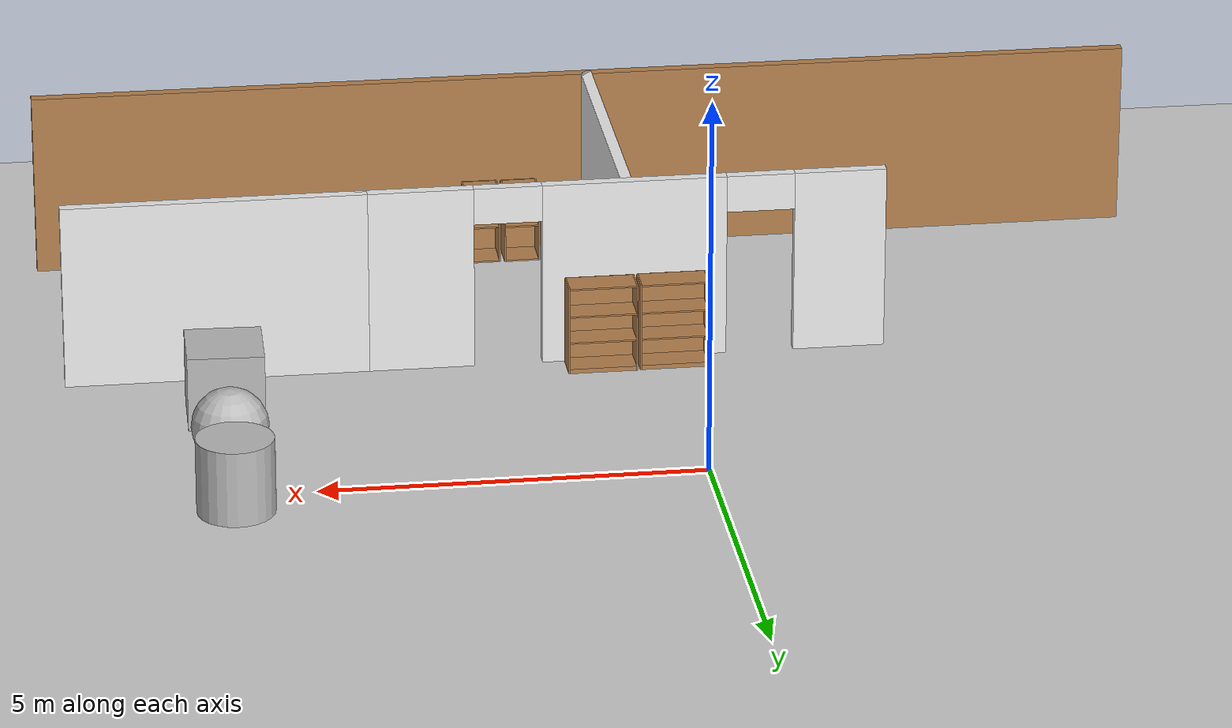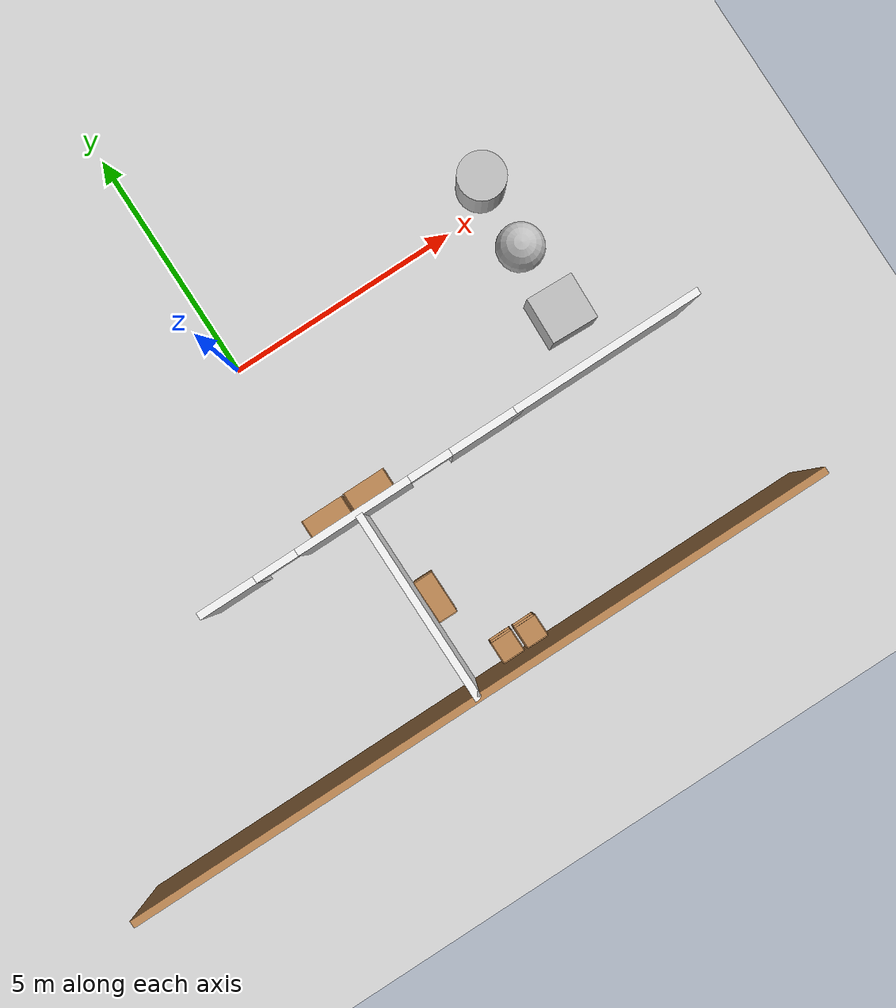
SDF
<sdf version="1.6">
 <world name="default">
  <model name="ground_plane">
   <static>1</static>
   <link name="link">
    <collision name="collision">
     <geometry><plane><normal>0 0 1</normal><size>100 100</size></plane></geometry>
     <surface>
      <contact><collide_bitmask>65535</collide_bitmask></contact>
      <friction><ode><mu>100</mu><mu2>50</mu2></ode></friction>
     </surface>
    </collision>
    <visual name="visual">
     <cast_shadows>0</cast_shadows>
     <geometry><plane><normal>0 0 1</normal><size>100 100</size></plane></geometry>
     <material>
      <script><uri>file://media/materials/scripts/gazebo.material</uri><name>Gazebo/Grey</name></script>
     </material>
    </visual>
   </link>
  </model>
  <model name="textured_shapes">
   <pose>5.99523 -1.07285 0.5 0 -0 -0.035266</pose>
   <link name="box">
    <pose>0 -1.5 0 0 -0 0</pose>
    <collision name="collision"><geometry><box><size>1 1 1</size></box></geometry></collision>
    <visual name="visual">
     <geometry><box><size>1 1 1</size></box></geometry>
     <material>
      <script>
       <uri>model://textured_shapes/materials/scripts</uri>
       <uri>model://textured_shapes/materials/textures</uri>
       <name>TexturedShape/Squares</name>
      </script>
     </material>
    </visual>
    <inertial>
     <inertia><ixx>1</ixx><ixy>0</ixy><ixz>0</ixz><iyy>1</iyy><iyz>0</iyz><izz>1</izz></inertia>
     <mass>1</mass>
    </inertial>
   </link>
   <link name="sphere">
    <collision name="collision"><geometry><sphere><radius>0.5</radius></sphere></geometry></collision>
    <visual name="visual">
     <geometry><sphere><radius>0.5</radius></sphere></geometry>
     <material>
      <script>
       <uri>model://textured_shapes/materials/scripts</uri>
       <uri>model://textured_shapes/materials/textures</uri>
       <name>TexturedShape/Squares</name>
      </script>
     </material>
    </visual>
    <inertial>
     <inertia><ixx>1</ixx><ixy>0</ixy><ixz>0</ixz><iyy>1</iyy><iyz>0</iyz><izz>1</izz></inertia>
     <mass>1</mass>
    </inertial>
   </link>
   <link name="cylinder">
    <pose>0 1.5 0 0 -0 0</pose>
    <collision name="collision">
     <geometry><cylinder><radius>0.5</radius><length>1</length></cylinder></geometry>
    </collision>
    <visual name="visual">
     <geometry><cylinder><radius>0.5</radius><length>1</length></cylinder></geometry>
     <material>
      <script>
       <uri>model://textured_shapes/materials/scripts</uri>
       <uri>model://textured_shapes/materials/textures</uri>
       <name>TexturedShape/Squares</name>
      </script>
     </material>
    </visual>
    <inertial>
     <inertia><ixx>1</ixx><ixy>0</ixy><ixz>0</ixz><iyy>1</iyy><iyz>0</iyz><izz>1</izz></inertia>
     <mass>1</mass>
    </inertial>
   </link>
  </model>
  <model name="bookshelf">
   <static>1</static>
   <link name="link">
    <inertial><mass>1</mass></inertial>
    <collision name="back">
     <pose>0 0.005 0.6 0 -0 0</pose>
     <geometry><box><size>0.9 0.01 1.2</size></box></geometry>
    </collision>
    <visual name="visual1">
     <pose>0 0.005 0.6 0 -0 0</pose>
     <geometry><box><size>0.9 0.01 1.2</size></box></geometry>
     <material>
      <script><uri>file://media/materials/scripts/gazebo.material</uri><name>Gazebo/Wood</name></script>
     </material>
    </visual>
    <collision name="left_side">
     <pose>0.45 -0.195 0.6 0 -0 0</pose>
     <geometry><box><size>0.02 0.4 1.2</size></box></geometry>
    </collision>
    <visual name="visual2">
     <pose>0.45 -0.195 0.6 0 -0 0</pose>
     <geometry><box><size>0.02 0.4 1.2</size></box></geometry>
     <material>
      <script><uri>file://media/materials/scripts/gazebo.material</uri><name>Gazebo/Wood</name></script>
     </material>
    </visual>
    <collision name="right_side">
     <pose>-0.45 -0.195 0.6 0 -0 0</pose>
     <geometry><box><size>0.02 0.4 1.2</size></box></geometry>
    </collision>
    <visual name="visual3">
     <pose>-0.45 -0.195 0.6 0 -0 0</pose>
     <geometry><box><size>0.02 0.4 1.2</size></box></geometry>
     <material>
      <script><uri>file://media/materials/scripts/gazebo.material</uri><name>Gazebo/Wood</name></script>
     </material>
    </visual>
    <collision name="bottom">
     <pose>0 -0.195 0.03 0 -0 0</pose>
     <geometry><box><size>0.88 0.4 0.06</size></box></geometry>
    </collision>
    <visual name="visual4">
     <pose>0 -0.195 0.03 0 -0 0</pose>
     <geometry><box><size>0.88 0.4 0.06</size></box></geometry>
     <material>
      <script><uri>file://media/materials/scripts/gazebo.material</uri><name>Gazebo/Wood</name></script>
     </material>
    </visual>
    <collision name="top">
     <pose>0 -0.195 1.19 0 -0 0</pose>
     <geometry><box><size>0.88 0.4 0.02</size></box></geometry>
    </collision>
    <visual name="visual5">
     <pose>0 -0.195 1.19 0 -0 0</pose>
     <geometry><box><size>0.88 0.4 0.02</size></box></geometry>
     <material>
      <script><uri>file://media/materials/scripts/gazebo.material</uri><name>Gazebo/Wood</name></script>
     </material>
    </visual>
    <collision name="low_shelf">
     <pose>0 -0.195 0.43 0 -0 0</pose>
     <geometry><box><size>0.88 0.4 0.02</size></box></geometry>
    </collision>
    <visual name="visual6">
     <pose>0 -0.195 0.43 0 -0 0</pose>
     <geometry><box><size>0.88 0.4 0.02</size></box></geometry>
     <material>
      <script><uri>file://media/materials/scripts/gazebo.material</uri><name>Gazebo/Wood</name></script>
     </material>
    </visual>
    <collision name="high_shelf">
     <pose>0 -0.195 0.8 0 -0 0</pose>
     <geometry><box><size>0.88 0.4 0.02</size></box></geometry>
    </collision>
    <visual name="visual7">
     <pose>0 -0.195 0.8 0 -0 0</pose>
     <geometry><box><size>0.88 0.4 0.02</size></box></geometry>
     <material>
      <script><uri>file://media/materials/scripts/gazebo.material</uri><name>Gazebo/Wood</name></script>
     </material>
    </visual>
   </link>
   <pose>-0.042308 -3.68874 0 0 -0 3.14159</pose>
  </model>
  <model name="bookshelf_clone">
   <static>1</static>
   <link name="link">
    <inertial><mass>1</mass></inertial>
    <collision name="back">
     <pose>0 0.005 0.6 0 -0 0</pose>
     <geometry><box><size>0.9 0.01 1.2</size></box></geometry>
    </collision>
    <visual name="visual1">
     <pose>0 0.005 0.6 0 -0 0</pose>
     <geometry><box><size>0.9 0.01 1.2</size></box></geometry>
     <material>
      <script><uri>file://media/materials/scripts/gazebo.material</uri><name>Gazebo/Wood</name></script>
     </material>
    </visual>
    <collision name="left_side">
     <pose>0.45 -0.195 0.6 0 -0 0</pose>
     <geometry><box><size>0.02 0.4 1.2</size></box></geometry>
    </collision>
    <visual name="visual2">
     <pose>0.45 -0.195 0.6 0 -0 0</pose>
     <geometry><box><size>0.02 0.4 1.2</size></box></geometry>
     <material>
      <script><uri>file://media/materials/scripts/gazebo.material</uri><name>Gazebo/Wood</name></script>
     </material>
    </visual>
    <collision name="right_side">
     <pose>-0.45 -0.195 0.6 0 -0 0</pose>
     <geometry><box><size>0.02 0.4 1.2</size></box></geometry>
    </collision>
    <visual name="visual3">
     <pose>-0.45 -0.195 0.6 0 -0 0</pose>
     <geometry><box><size>0.02 0.4 1.2</size></box></geometry>
     <material>
      <script><uri>file://media/materials/scripts/gazebo.material</uri><name>Gazebo/Wood</name></script>
     </material>
    </visual>
    <collision name="bottom">
     <pose>0 -0.195 0.03 0 -0 0</pose>
     <geometry><box><size>0.88 0.4 0.06</size></box></geometry>
    </collision>
    <visual name="visual4">
     <pose>0 -0.195 0.03 0 -0 0</pose>
     <geometry><box><size>0.88 0.4 0.06</size></box></geometry>
     <material>
      <script><uri>file://media/materials/scripts/gazebo.material</uri><name>Gazebo/Wood</name></script>
     </material>
    </visual>
    <collision name="top">
     <pose>0 -0.195 1.19 0 -0 0</pose>
     <geometry><box><size>0.88 0.4 0.02</size></box></geometry>
    </collision>
    <visual name="visual5">
     <pose>0 -0.195 1.19 0 -0 0</pose>
     <geometry><box><size>0.88 0.4 0.02</size></box></geometry>
     <material>
      <script><uri>file://media/materials/scripts/gazebo.material</uri><name>Gazebo/Wood</name></script>
     </material>
    </visual>
    <collision name="low_shelf">
     <pose>0 -0.195 0.43 0 -0 0</pose>
     <geometry><box><size>0.88 0.4 0.02</size></box></geometry>
    </collision>
    <visual name="visual6">
     <pose>0 -0.195 0.43 0 -0 0</pose>
     <geometry><box><size>0.88 0.4 0.02</size></box></geometry>
     <material>
      <script><uri>file://media/materials/scripts/gazebo.material</uri><name>Gazebo/Wood</name></script>
     </material>
    </visual>
    <collision name="high_shelf">
     <pose>0 -0.195 0.8 0 -0 0</pose>
     <geometry><box><size>0.88 0.4 0.02</size></box></geometry>
    </collision>
    <visual name="visual7">
     <pose>0 -0.195 0.8 0 -0 0</pose>
     <geometry><box><size>0.88 0.4 0.02</size></box></geometry>
     <material>
      <script><uri>file://media/materials/scripts/gazebo.material</uri><name>Gazebo/Wood</name></script>
     </material>
    </visual>
   </link>
   <pose>0.908578 -3.67779 0 0 -0 3.14159</pose>
  </model>
  <model name="cabinet_clone">
   <static>1</static>
   <link name="cabinet_bottom_plate">
    <inertial>
     <pose>0 0 -1 0 -0 0</pose>
     <inertia><ixx>2.05</ixx><ixy>0</ixy><ixz>0</ixz><iyy>2.05</iyy><iyz>0</iyz><izz>2.05</izz></inertia>
     <mass>25</mass>
    </inertial>
    <collision name="cabinet_bottom_plate_geom">
     <pose>0 0 0.01 0 -0 0</pose>
     <geometry><box><size>0.45 0.45 0.02</size></box></geometry>
    </collision>
    <visual name="cabinet_bottom_plate_geom_visual">
     <pose>0 0 0.01 0 -0 0</pose>
     <geometry><box><size>0.45 0.45 0.02</size></box></geometry>
     <material>
      <script><uri>file://media/materials/scripts/gazebo.material</uri><name>Gazebo/Wood</name></script>
     </material>
    </visual>
    <collision name="cabinet_bottom_plate_geom_cabinet_back_plate">
     <pose>0.235 0 0.51 0 -0 0</pose>
     <geometry><box><size>0.02 0.45 1.02</size></box></geometry>
    </collision>
    <visual name="cabinet_bottom_plate_geom_cabinet_back_plate_visual">
     <pose>0.235 0 0.51 0 -0 0</pose>
     <geometry><box><size>0.02 0.45 1.02</size></box></geometry>
     <material>
      <script><uri>file://media/materials/scripts/gazebo.material</uri><name>Gazebo/Wood</name></script>
     </material>
    </visual>
    <collision name="cabinet_bottom_plate_geom_cabinet_left_plate">
     <pose>0 0.235 0.51 0 -0 0</pose>
     <geometry><box><size>0.45 0.02 1.02</size></box></geometry>
    </collision>
    <visual name="cabinet_bottom_plate_geom_cabinet_left_plate_visual">
     <pose>0 0.235 0.51 0 -0 0</pose>
     <geometry><box><size>0.45 0.02 1.02</size></box></geometry>
     <material>
      <script><uri>file://media/materials/scripts/gazebo.material</uri><name>Gazebo/Wood</name></script>
     </material>
    </visual>
    <collision name="cabinet_bottom_plate_geom_cabinet_middle_plate">
     <pose>0 0 0.51 0 -0 0</pose>
     <geometry><box><size>0.45 0.45 0.02</size></box></geometry>
    </collision>
    <visual name="cabinet_bottom_plate_geom_cabinet_middle_plate_visual">
     <pose>0 0 0.51 0 -0 0</pose>
     <geometry><box><size>0.45 0.45 0.02</size></box></geometry>
     <material>
      <script><uri>file://media/materials/scripts/gazebo.material</uri><name>Gazebo/Wood</name></script>
     </material>
    </visual>
    <collision name="cabinet_bottom_plate_geom_cabinet_right_plate">
     <pose>0 -0.235 0.51 0 -0 0</pose>
     <geometry><box><size>0.45 0.02 1.02</size></box></geometry>
    </collision>
    <visual name="cabinet_bottom_plate_geom_cabinet_right_plate_visual">
     <pose>0 -0.235 0.51 0 -0 0</pose>
     <geometry><box><size>0.45 0.02 1.02</size></box></geometry>
     <material>
      <script><uri>file://media/materials/scripts/gazebo.material</uri><name>Gazebo/Wood</name></script>
     </material>
    </visual>
    <collision name="cabinet_bottom_plate_geom_cabinet_top_plate">
     <pose>0 0 1.01 0 -0 0</pose>
     <geometry><box><size>0.45 0.45 0.02</size></box></geometry>
    </collision>
    <visual name="cabinet_bottom_plate_geom_cabinet_top_plate_visual">
     <pose>0 0 1.01 0 -0 0</pose>
     <geometry><box><size>0.45 0.45 0.02</size></box></geometry>
     <material>
      <script><uri>file://media/materials/scripts/gazebo.material</uri><name>Gazebo/Wood</name></script>
     </material>
    </visual>
   </link>
   <pose>1.49574 -7.4413 0 0 0 -1.5708</pose>
  </model>
  <model name="cabinet_clone_0">
   <static>1</static>
   <link name="cabinet_bottom_plate">
    <inertial>
     <pose>0 0 -1 0 -0 0</pose>
     <inertia><ixx>2.05</ixx><ixy>0</ixy><ixz>0</ixz><iyy>2.05</iyy><iyz>0</iyz><izz>2.05</izz></inertia>
     <mass>25</mass>
    </inertial>
    <collision name="cabinet_bottom_plate_geom">
     <pose>0 0 0.01 0 -0 0</pose>
     <geometry><box><size>0.45 0.45 0.02</size></box></geometry>
    </collision>
    <visual name="cabinet_bottom_plate_geom_visual">
     <pose>0 0 0.01 0 -0 0</pose>
     <geometry><box><size>0.45 0.45 0.02</size></box></geometry>
     <material>
      <script><uri>file://media/materials/scripts/gazebo.material</uri><name>Gazebo/Wood</name></script>
     </material>
    </visual>
    <collision name="cabinet_bottom_plate_geom_cabinet_back_plate">
     <pose>0.235 0 0.51 0 -0 0</pose>
     <geometry><box><size>0.02 0.45 1.02</size></box></geometry>
    </collision>
    <visual name="cabinet_bottom_plate_geom_cabinet_back_plate_visual">
     <pose>0.235 0 0.51 0 -0 0</pose>
     <geometry><box><size>0.02 0.45 1.02</size></box></geometry>
     <material>
      <script><uri>file://media/materials/scripts/gazebo.material</uri><name>Gazebo/Wood</name></script>
     </material>
    </visual>
    <collision name="cabinet_bottom_plate_geom_cabinet_left_plate">
     <pose>0 0.235 0.51 0 -0 0</pose>
     <geometry><box><size>0.45 0.02 1.02</size></box></geometry>
    </collision>
    <visual name="cabinet_bottom_plate_geom_cabinet_left_plate_visual">
     <pose>0 0.235 0.51 0 -0 0</pose>
     <geometry><box><size>0.45 0.02 1.02</size></box></geometry>
     <material>
      <script><uri>file://media/materials/scripts/gazebo.material</uri><name>Gazebo/Wood</name></script>
     </material>
    </visual>
    <collision name="cabinet_bottom_plate_geom_cabinet_middle_plate">
     <pose>0 0 0.51 0 -0 0</pose>
     <geometry><box><size>0.45 0.45 0.02</size></box></geometry>
    </collision>
    <visual name="cabinet_bottom_plate_geom_cabinet_middle_plate_visual">
     <pose>0 0 0.51 0 -0 0</pose>
     <geometry><box><size>0.45 0.45 0.02</size></box></geometry>
     <material>
      <script><uri>file://media/materials/scripts/gazebo.material</uri><name>Gazebo/Wood</name></script>
     </material>
    </visual>
    <collision name="cabinet_bottom_plate_geom_cabinet_right_plate">
     <pose>0 -0.235 0.51 0 -0 0</pose>
     <geometry><box><size>0.45 0.02 1.02</size></box></geometry>
    </collision>
    <visual name="cabinet_bottom_plate_geom_cabinet_right_plate_visual">
     <pose>0 -0.235 0.51 0 -0 0</pose>
     <geometry><box><size>0.45 0.02 1.02</size></box></geometry>
     <material>
      <script><uri>file://media/materials/scripts/gazebo.material</uri><name>Gazebo/Wood</name></script>
     </material>
    </visual>
    <collision name="cabinet_bottom_plate_geom_cabinet_top_plate">
     <pose>0 0 1.01 0 -0 0</pose>
     <geometry><box><size>0.45 0.45 0.02</size></box></geometry>
    </collision>
    <visual name="cabinet_bottom_plate_geom_cabinet_top_plate_visual">
     <pose>0 0 1.01 0 -0 0</pose>
     <geometry><box><size>0.45 0.45 0.02</size></box></geometry>
     <material>
      <script><uri>file://media/materials/scripts/gazebo.material</uri><name>Gazebo/Wood</name></script>
     </material>
    </visual>
   </link>
   <pose>2.03504 -7.44814 0 0 0 -1.5708</pose>
  </model>
  <model name="bookshelf_clone_clone">
   <static>1</static>
   <link name="link">
    <inertial><mass>1</mass></inertial>
    <collision name="back">
     <pose>0 0.005 0.6 0 -0 0</pose>
     <geometry><box><size>0.9 0.01 1.2</size></box></geometry>
    </collision>
    <visual name="visual1">
     <pose>0 0.005 0.6 0 -0 0</pose>
     <geometry><box><size>0.9 0.01 1.2</size></box></geometry>
     <material>
      <script><uri>file://media/materials/scripts/gazebo.material</uri><name>Gazebo/Wood</name></script>
     </material>
    </visual>
    <collision name="left_side">
     <pose>0.45 -0.195 0.6 0 -0 0</pose>
     <geometry><box><size>0.02 0.4 1.2</size></box></geometry>
    </collision>
    <visual name="visual2">
     <pose>0.45 -0.195 0.6 0 -0 0</pose>
     <geometry><box><size>0.02 0.4 1.2</size></box></geometry>
     <material>
      <script><uri>file://media/materials/scripts/gazebo.material</uri><name>Gazebo/Wood</name></script>
     </material>
    </visual>
    <collision name="right_side">
     <pose>-0.45 -0.195 0.6 0 -0 0</pose>
     <geometry><box><size>0.02 0.4 1.2</size></box></geometry>
    </collision>
    <visual name="visual3">
     <pose>-0.45 -0.195 0.6 0 -0 0</pose>
     <geometry><box><size>0.02 0.4 1.2</size></box></geometry>
     <material>
      <script><uri>file://media/materials/scripts/gazebo.material</uri><name>Gazebo/Wood</name></script>
     </material>
    </visual>
    <collision name="bottom">
     <pose>0 -0.195 0.03 0 -0 0</pose>
     <geometry><box><size>0.88 0.4 0.06</size></box></geometry>
    </collision>
    <visual name="visual4">
     <pose>0 -0.195 0.03 0 -0 0</pose>
     <geometry><box><size>0.88 0.4 0.06</size></box></geometry>
     <material>
      <script><uri>file://media/materials/scripts/gazebo.material</uri><name>Gazebo/Wood</name></script>
     </material>
    </visual>
    <collision name="top">
     <pose>0 -0.195 1.19 0 -0 0</pose>
     <geometry><box><size>0.88 0.4 0.02</size></box></geometry>
    </collision>
    <visual name="visual5">
     <pose>0 -0.195 1.19 0 -0 0</pose>
     <geometry><box><size>0.88 0.4 0.02</size></box></geometry>
     <material>
      <script><uri>file://media/materials/scripts/gazebo.material</uri><name>Gazebo/Wood</name></script>
     </material>
    </visual>
    <collision name="low_shelf">
     <pose>0 -0.195 0.43 0 -0 0</pose>
     <geometry><box><size>0.88 0.4 0.02</size></box></geometry>
    </collision>
    <visual name="visual6">
     <pose>0 -0.195 0.43 0 -0 0</pose>
     <geometry><box><size>0.88 0.4 0.02</size></box></geometry>
     <material>
      <script><uri>file://media/materials/scripts/gazebo.material</uri><name>Gazebo/Wood</name></script>
     </material>
    </visual>
    <collision name="high_shelf">
     <pose>0 -0.195 0.8 0 -0 0</pose>
     <geometry><box><size>0.88 0.4 0.02</size></box></geometry>
    </collision>
    <visual name="visual7">
     <pose>0 -0.195 0.8 0 -0 0</pose>
     <geometry><box><size>0.88 0.4 0.02</size></box></geometry>
     <material>
      <script><uri>file://media/materials/scripts/gazebo.material</uri><name>Gazebo/Wood</name></script>
     </material>
    </visual>
   </link>
   <pose>0.663344 -5.89171 0 0 -0 1.57079</pose>
  </model>
  <model name="my_building_0">
   <link name="Wall_12">
    <pose>-1.48194 -3.42537 0 0 -0 0</pose>
    <inertial>
     <mass>1</mass>
     <inertia><ixx>1</ixx><ixy>0</ixy><ixz>0</ixz><iyy>1</iyy><iyz>0</iyz><izz>1</izz></inertia>
    </inertial>
    <visual name="Wall_12_Visual_0">
     <pose>-2.89158 0 1.25 0 -0 0</pose>
     <geometry><box><size>1.21684 0.15 2.5</size></box></geometry>
     <material>
      <script><uri>file://media/materials/scripts/gazebo.material</uri><name>Gazebo/White</name></script>
      <ambient>1 1 1 1</ambient>
      <diffuse>1 1 1 1</diffuse>
      <specular>0.2 0.2 0.2 1</specular>
      <emissive>0 0 0 1</emissive>
      <shader type="pixel"><normal_map>__default__</normal_map></shader>
     </material>
     <meta><layer>0</layer></meta>
    </visual>
    <visual name="Wall_12_Visual_1">
     <pose>-0.161658 0 1.25 0 -0 0</pose>
     <geometry><box><size>2.44301 0.15 2.5</size></box></geometry>
     <material>
      <script><uri>file://media/materials/scripts/gazebo.material</uri><name>Gazebo/White</name></script>
      <ambient>1 1 1 1</ambient>
      <diffuse>1 1 1 1</diffuse>
      <specular>0.2 0.2 0.2 1</specular>
      <emissive>0 0 0 1</emissive>
      <shader type="pixel"><normal_map>__default__</normal_map></shader>
     </material>
     <meta><layer>0</layer></meta>
    </visual>
    <visual name="Wall_12_Visual_2">
     <pose>2.72993 0 1.25 0 -0 0</pose>
     <geometry><box><size>1.54015 0.15 2.5</size></box></geometry>
     <material>
      <script><uri>file://media/materials/scripts/gazebo.material</uri><name>Gazebo/White</name></script>
      <ambient>1 1 1 1</ambient>
      <diffuse>1 1 1 1</diffuse>
      <specular>0.2 0.2 0.2 1</specular>
      <emissive>0 0 0 1</emissive>
      <shader type="pixel"><normal_map>__default__</normal_map></shader>
     </material>
     <meta><layer>0</layer></meta>
    </visual>
    <visual name="Wall_12_Visual_3">
     <pose>-1.83316 0 2.25 0 -0 0</pose>
     <geometry><box><size>0.9 0.15 0.5</size></box></geometry>
     <material>
      <script><uri>file://media/materials/scripts/gazebo.material</uri><name>Gazebo/White</name></script>
      <ambient>1 1 1 1</ambient>
      <diffuse>1 1 1 1</diffuse>
      <specular>0.2 0.2 0.2 1</specular>
      <emissive>0 0 0 1</emissive>
      <shader type="pixel"><normal_map>__default__</normal_map></shader>
     </material>
     <meta><layer>0</layer></meta>
    </visual>
    <visual name="Wall_12_Visual_4">
     <pose>1.50985 0 2.25 0 -0 0</pose>
     <geometry><box><size>0.9 0.15 0.5</size></box></geometry>
     <material>
      <script><uri>file://media/materials/scripts/gazebo.material</uri><name>Gazebo/White</name></script>
      <ambient>1 1 1 1</ambient>
      <diffuse>1 1 1 1</diffuse>
      <specular>0.2 0.2 0.2 1</specular>
      <emissive>0 0 0 1</emissive>
      <shader type="pixel"><normal_map>__default__</normal_map></shader>
     </material>
     <meta><layer>0</layer></meta>
    </visual>
    <collision name="Wall_12_Collision_0">
     <pose>-2.89158 0 1.25 0 -0 0</pose>
     <geometry><box><size>1.21684 0.15 2.5</size></box></geometry>
     <surface>
      <friction>
       <ode><mu>1</mu><mu2>1</mu2><fdir1>0 0 0</fdir1><slip1>0</slip1><slip2>0</slip2></ode>
       <torsional>
        <coefficient>1</coefficient>
        <patch_radius>0</patch_radius>
        <surface_radius>0</surface_radius>
        <use_patch_radius>1</use_patch_radius>
        <ode><slip>0</slip></ode>
       </torsional>
      </friction>
      <bounce><restitution_coefficient>0</restitution_coefficient><threshold>1e+06</threshold></bounce>
      <contact>
       <collide_without_contact>0</collide_without_contact>
       <collide_without_contact_bitmask>1</collide_without_contact_bitmask>
       <collide_bitmask>1</collide_bitmask>
       <ode>
        <soft_cfm>0</soft_cfm>
        <soft_erp>0.2</soft_erp>
        <kp>1e+13</kp>
        <kd>1</kd>
        <max_vel>0.01</max_vel>
        <min_depth>0</min_depth>
       </ode>
       <bullet>
        <split_impulse>1</split_impulse>
        <split_impulse_penetration_threshold>-0.01</split_impulse_penetration_threshold>
        <soft_cfm>0</soft_cfm>
        <soft_erp>0.2</soft_erp>
        <kp>1e+13</kp>
        <kd>1</kd>
       </bullet>
      </contact>
     </surface>
    </collision>
    <collision name="Wall_12_Collision_2">
     <pose>2.72993 0 1.25 0 -0 0</pose>
     <geometry><box><size>1.54015 0.15 2.5</size></box></geometry>
     <surface>
      <friction>
       <ode><mu>1</mu><mu2>1</mu2><fdir1>0 0 0</fdir1><slip1>0</slip1><slip2>0</slip2></ode>
       <torsional>
        <coefficient>1</coefficient>
        <patch_radius>0</patch_radius>
        <surface_radius>0</surface_radius>
        <use_patch_radius>1</use_patch_radius>
        <ode><slip>0</slip></ode>
       </torsional>
      </friction>
      <bounce><restitution_coefficient>0</restitution_coefficient><threshold>1e+06</threshold></bounce>
      <contact>
       <collide_without_contact>0</collide_without_contact>
       <collide_without_contact_bitmask>1</collide_without_contact_bitmask>
       <collide_bitmask>1</collide_bitmask>
       <ode>
        <soft_cfm>0</soft_cfm>
        <soft_erp>0.2</soft_erp>
        <kp>1e+13</kp>
        <kd>1</kd>
        <max_vel>0.01</max_vel>
        <min_depth>0</min_depth>
       </ode>
       <bullet>
        <split_impulse>1</split_impulse>
        <split_impulse_penetration_threshold>-0.01</split_impulse_penetration_threshold>
        <soft_cfm>0</soft_cfm>
        <soft_erp>0.2</soft_erp>
        <kp>1e+13</kp>
        <kd>1</kd>
       </bullet>
      </contact>
     </surface>
    </collision>
    <collision name="Wall_12_Collision_1">
     <pose>-0.161658 0 1.25 0 -0 0</pose>
     <geometry><box><size>2.44301 0.15 2.5</size></box></geometry>
     <surface>
      <friction>
       <ode><mu>1</mu><mu2>1</mu2><fdir1>0 0 0</fdir1><slip1>0</slip1><slip2>0</slip2></ode>
       <torsional>
        <coefficient>1</coefficient>
        <patch_radius>0</patch_radius>
        <surface_radius>0</surface_radius>
        <use_patch_radius>1</use_patch_radius>
        <ode><slip>0</slip></ode>
       </torsional>
      </friction>
      <bounce><restitution_coefficient>0</restitution_coefficient><threshold>1e+06</threshold></bounce>
      <contact>
       <collide_without_contact>0</collide_without_contact>
       <collide_without_contact_bitmask>1</collide_without_contact_bitmask>
       <collide_bitmask>1</collide_bitmask>
       <ode>
        <soft_cfm>0</soft_cfm>
        <soft_erp>0.2</soft_erp>
        <kp>1e+13</kp>
        <kd>1</kd>
        <max_vel>0.01</max_vel>
        <min_depth>0</min_depth>
       </ode>
       <bullet>
        <split_impulse>1</split_impulse>
        <split_impulse_penetration_threshold>-0.01</split_impulse_penetration_threshold>
        <soft_cfm>0</soft_cfm>
        <soft_erp>0.2</soft_erp>
        <kp>1e+13</kp>
        <kd>1</kd>
       </bullet>
      </contact>
     </surface>
    </collision>
    <collision name="Wall_12_Collision_3">
     <pose>-1.83316 0 2.25 0 -0 0</pose>
     <geometry><box><size>0.9 0.15 0.5</size></box></geometry>
     <surface>
      <friction>
       <ode><mu>1</mu><mu2>1</mu2><fdir1>0 0 0</fdir1><slip1>0</slip1><slip2>0</slip2></ode>
       <torsional>
        <coefficient>1</coefficient>
        <patch_radius>0</patch_radius>
        <surface_radius>0</surface_radius>
        <use_patch_radius>1</use_patch_radius>
        <ode><slip>0</slip></ode>
       </torsional>
      </friction>
      <bounce><restitution_coefficient>0</restitution_coefficient><threshold>1e+06</threshold></bounce>
      <contact>
       <collide_without_contact>0</collide_without_contact>
       <collide_without_contact_bitmask>1</collide_without_contact_bitmask>
       <collide_bitmask>1</collide_bitmask>
       <ode>
        <soft_cfm>0</soft_cfm>
        <soft_erp>0.2</soft_erp>
        <kp>1e+13</kp>
        <kd>1</kd>
        <max_vel>0.01</max_vel>
        <min_depth>0</min_depth>
       </ode>
       <bullet>
        <split_impulse>1</split_impulse>
        <split_impulse_penetration_threshold>-0.01</split_impulse_penetration_threshold>
        <soft_cfm>0</soft_cfm>
        <soft_erp>0.2</soft_erp>
        <kp>1e+13</kp>
        <kd>1</kd>
       </bullet>
      </contact>
     </surface>
    </collision>
    <collision name="Wall_12_Collision_4">
     <pose>1.50985 0 2.25 0 -0 0</pose>
     <geometry><box><size>0.9 0.15 0.5</size></box></geometry>
     <surface>
      <friction>
       <ode><mu>1</mu><mu2>1</mu2><fdir1>0 0 0</fdir1><slip1>0</slip1><slip2>0</slip2></ode>
       <torsional>
        <coefficient>1</coefficient>
        <patch_radius>0</patch_radius>
        <surface_radius>0</surface_radius>
        <use_patch_radius>1</use_patch_radius>
        <ode><slip>0</slip></ode>
       </torsional>
      </friction>
      <bounce><restitution_coefficient>0</restitution_coefficient><threshold>1e+06</threshold></bounce>
      <contact>
       <collide_without_contact>0</collide_without_contact>
       <collide_without_contact_bitmask>1</collide_without_contact_bitmask>
       <collide_bitmask>1</collide_bitmask>
       <ode>
        <soft_cfm>0</soft_cfm>
        <soft_erp>0.2</soft_erp>
        <kp>1e+13</kp>
        <kd>1</kd>
        <max_vel>0.01</max_vel>
        <min_depth>0</min_depth>
       </ode>
       <bullet>
        <split_impulse>1</split_impulse>
        <split_impulse_penetration_threshold>-0.01</split_impulse_penetration_threshold>
        <soft_cfm>0</soft_cfm>
        <soft_erp>0.2</soft_erp>
        <kp>1e+13</kp>
        <kd>1</kd>
       </bullet>
      </contact>
     </surface>
    </collision>
   </link>
   <link name="Wall_21">
    <pose>3.86806 -3.42537 0 0 -0 0</pose>
    <inertial>
     <mass>1</mass>
     <inertia><ixx>1</ixx><ixy>0</ixy><ixz>0</ixz><iyy>1</iyy><iyz>0</iyz><izz>1</izz></inertia>
    </inertial>
    <visual name="Wall_21_Visual">
     <pose>0 0 1.25 0 -0 0</pose>
     <geometry><box><size>4 0.15 2.5</size></box></geometry>
     <material>
      <script><uri>file://media/materials/scripts/gazebo.material</uri><name>Gazebo/White</name></script>
      <ambient>1 1 1 1</ambient>
      <diffuse>1 1 1 1</diffuse>
      <specular>0.2 0.2 0.2 1</specular>
      <emissive>0 0 0 1</emissive>
      <shader type="pixel"><normal_map>__default__</normal_map></shader>
     </material>
     <meta><layer>0</layer></meta>
    </visual>
    <collision name="Wall_21_Collision">
     <pose>0 0 1.25 0 -0 0</pose>
     <geometry><box><size>4 0.15 2.5</size></box></geometry>
     <surface>
      <friction>
       <ode><mu>1</mu><mu2>1</mu2><fdir1>0 0 0</fdir1><slip1>0</slip1><slip2>0</slip2></ode>
       <torsional>
        <coefficient>1</coefficient>
        <patch_radius>0</patch_radius>
        <surface_radius>0</surface_radius>
        <use_patch_radius>1</use_patch_radius>
        <ode><slip>0</slip></ode>
       </torsional>
      </friction>
      <bounce><restitution_coefficient>0</restitution_coefficient><threshold>1e+06</threshold></bounce>
      <contact>
       <collide_without_contact>0</collide_without_contact>
       <collide_without_contact_bitmask>1</collide_without_contact_bitmask>
       <collide_bitmask>1</collide_bitmask>
       <ode>
        <soft_cfm>0</soft_cfm>
        <soft_erp>0.2</soft_erp>
        <kp>1e+13</kp>
        <kd>1</kd>
        <max_vel>0.01</max_vel>
        <min_depth>0</min_depth>
       </ode>
       <bullet>
        <split_impulse>1</split_impulse>
        <split_impulse_penetration_threshold>-0.01</split_impulse_penetration_threshold>
        <soft_cfm>0</soft_cfm>
        <soft_erp>0.2</soft_erp>
        <kp>1e+13</kp>
        <kd>1</kd>
       </bullet>
      </contact>
     </surface>
    </collision>
   </link>
   <link name="Wall_23">
    <pose>-1.53994 -7.38637 0 0 -0 0</pose>
    <visual name="Wall_23_Visual">
     <pose>0 0 1.25 0 -0 0</pose>
     <geometry><box><size>0.15 0.15 2.5</size></box></geometry>
     <material>
      <script><uri>file://media/materials/scripts/gazebo.material</uri><name>Gazebo/Grey</name></script>
      <ambient>1 1 1 1</ambient>
      <diffuse>0.7 0.7 0.7 1</diffuse>
      <specular>0.01 0.01 0.01 1</specular>
      <emissive>0 0 0 1</emissive>
      <shader type="pixel"/>
     </material>
     <meta><layer>0</layer></meta>
    </visual>
    <collision name="Wall_23_Collision">
     <pose>0 0 1.25 0 -0 0</pose>
     <geometry><box><size>0.15 0.15 2.5</size></box></geometry>
     <surface>
      <friction>
       <ode><mu>1</mu><mu2>1</mu2><fdir1>0 0 0</fdir1><slip1>0</slip1><slip2>0</slip2></ode>
       <torsional>
        <coefficient>1</coefficient>
        <patch_radius>0</patch_radius>
        <surface_radius>0</surface_radius>
        <use_patch_radius>1</use_patch_radius>
        <ode><slip>0</slip></ode>
       </torsional>
      </friction>
      <bounce><restitution_coefficient>0</restitution_coefficient><threshold>1e+06</threshold></bounce>
      <contact>
       <collide_without_contact>0</collide_without_contact>
       <collide_without_contact_bitmask>1</collide_without_contact_bitmask>
       <collide_bitmask>1</collide_bitmask>
       <ode>
        <soft_cfm>0</soft_cfm>
        <soft_erp>0.2</soft_erp>
        <kp>1e+13</kp>
        <kd>1</kd>
        <max_vel>0.01</max_vel>
        <min_depth>0</min_depth>
       </ode>
       <bullet>
        <split_impulse>1</split_impulse>
        <split_impulse_penetration_threshold>-0.01</split_impulse_penetration_threshold>
        <soft_cfm>0</soft_cfm>
        <soft_erp>0.2</soft_erp>
        <kp>1e+13</kp>
        <kd>1</kd>
       </bullet>
      </contact>
     </surface>
    </collision>
   </link>
   <link name="Wall_25">
    <pose>-1.48206 -7.425 0 0 -0 0</pose>
    <inertial>
     <mass>1</mass>
     <inertia><ixx>1</ixx><ixy>0</ixy><ixz>0</ixz><iyy>1</iyy><iyz>0</iyz><izz>1</izz></inertia>
    </inertial>
    <visual name="Wall_25_Visual">
     <pose>0 0 1.25 0 -0 0</pose>
     <geometry><box><size>15 0.15 2.5</size></box></geometry>
     <material>
      <script><uri>file://media/materials/scripts/gazebo.material</uri><name>Gazebo/Wood</name></script>
      <ambient>1 1 1 1</ambient>
      <diffuse>1 1 1 1</diffuse>
      <specular>0.2 0.2 0.2 1</specular>
      <emissive>0 0 0 1</emissive>
      <shader type="pixel"><normal_map>__default__</normal_map></shader>
     </material>
     <meta><layer>0</layer></meta>
    </visual>
    <collision name="Wall_25_Collision">
     <pose>0 0 1.25 0 -0 0</pose>
     <geometry><box><size>15 0.15 2.5</size></box></geometry>
     <surface>
      <friction>
       <ode><mu>1</mu><mu2>1</mu2><fdir1>0 0 0</fdir1><slip1>0</slip1><slip2>0</slip2></ode>
       <torsional>
        <coefficient>1</coefficient>
        <patch_radius>0</patch_radius>
        <surface_radius>0</surface_radius>
        <use_patch_radius>1</use_patch_radius>
        <ode><slip>0</slip></ode>
       </torsional>
      </friction>
      <bounce><restitution_coefficient>0</restitution_coefficient><threshold>1e+06</threshold></bounce>
      <contact>
       <collide_without_contact>0</collide_without_contact>
       <collide_without_contact_bitmask>1</collide_without_contact_bitmask>
       <collide_bitmask>1</collide_bitmask>
       <ode>
        <soft_cfm>0</soft_cfm>
        <soft_erp>0.2</soft_erp>
        <kp>1e+13</kp>
        <kd>1</kd>
        <max_vel>0.01</max_vel>
        <min_depth>0</min_depth>
       </ode>
       <bullet>
        <split_impulse>1</split_impulse>
        <split_impulse_penetration_threshold>-0.01</split_impulse_penetration_threshold>
        <soft_cfm>0</soft_cfm>
        <soft_erp>0.2</soft_erp>
        <kp>1e+13</kp>
        <kd>1</kd>
       </bullet>
      </contact>
     </surface>
    </collision>
   </link>
   <link name="Wall_27">
    <pose>-1.53994 -5.46137 0 0 -0 1.5708</pose>
    <inertial>
     <mass>1</mass>
     <inertia><ixx>1</ixx><ixy>0</ixy><ixz>0</ixz><iyy>1</iyy><iyz>0</iyz><izz>1</izz></inertia>
    </inertial>
    <visual name="ModelPreview_1::Wall_27::visual_1">
     <pose>0 0 1.25 0 -0 0</pose>
     <geometry><box><size>4 0.15 2.5</size></box></geometry>
     <material>
      <script><uri>file://media/materials/scripts/gazebo.material</uri><name>Gazebo/White</name></script>
      <ambient>1 1 1 1</ambient>
      <diffuse>1 1 1 1</diffuse>
      <specular>0.2 0.2 0.2 1</specular>
      <emissive>0 0 0 1</emissive>
      <shader type="vertex"><normal_map>__default__</normal_map></shader>
     </material>
     <meta><layer>0</layer></meta>
    </visual>
    <visual name="Wall_27_Visual">
     <pose>0 0 1.25 0 -0 0</pose>
     <geometry><box><size>4 0.15 2.5</size></box></geometry>
     <material>
      <script><uri>file://media/materials/scripts/gazebo.material</uri><name>Gazebo/White</name></script>
      <ambient>1 1 1 1</ambient>
      <diffuse>1 1 1 1</diffuse>
      <specular>0.2 0.2 0.2 1</specular>
      <emissive>0 0 0 1</emissive>
      <shader type="vertex"><normal_map>__default__</normal_map></shader>
     </material>
     <meta><layer>0</layer></meta>
    </visual>
    <collision name="Wall_27_Collision">
     <pose>0 0 1.25 0 -0 0</pose>
     <geometry><box><size>4 0.15 2.5</size></box></geometry>
     <surface>
      <friction>
       <ode><mu>1</mu><mu2>1</mu2><fdir1>0 0 0</fdir1><slip1>0</slip1><slip2>0</slip2></ode>
       <torsional>
        <coefficient>1</coefficient>
        <patch_radius>0</patch_radius>
        <surface_radius>0</surface_radius>
        <use_patch_radius>1</use_patch_radius>
        <ode><slip>0</slip></ode>
       </torsional>
      </friction>
      <bounce><restitution_coefficient>0</restitution_coefficient><threshold>1e+06</threshold></bounce>
      <contact>
       <collide_without_contact>0</collide_without_contact>
       <collide_without_contact_bitmask>1</collide_without_contact_bitmask>
       <collide_bitmask>1</collide_bitmask>
       <ode>
        <soft_cfm>0</soft_cfm>
        <soft_erp>0.2</soft_erp>
        <kp>1e+13</kp>
        <kd>1</kd>
        <max_vel>0.01</max_vel>
        <min_depth>0</min_depth>
       </ode>
       <bullet>
        <split_impulse>1</split_impulse>
        <split_impulse_penetration_threshold>-0.01</split_impulse_penetration_threshold>
        <soft_cfm>0</soft_cfm>
        <soft_erp>0.2</soft_erp>
        <kp>1e+13</kp>
        <kd>1</kd>
       </bullet>
      </contact>
     </surface>
    </collision>
   </link>
   <static>1</static>
   <pose>2.08113 -0.36477 0 0 -0 0</pose>
  </model>
 </world>
</sdf>
